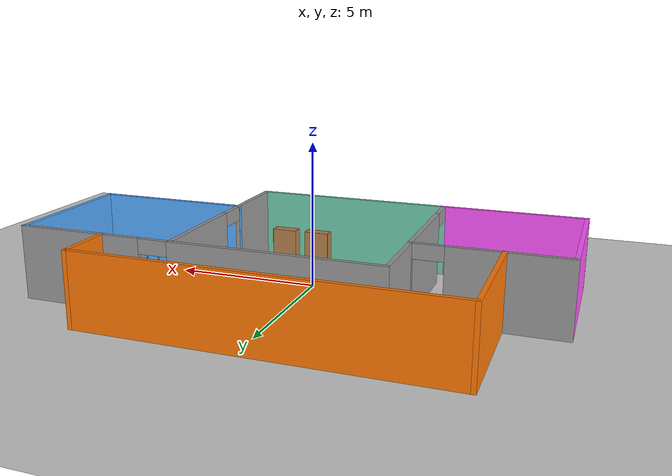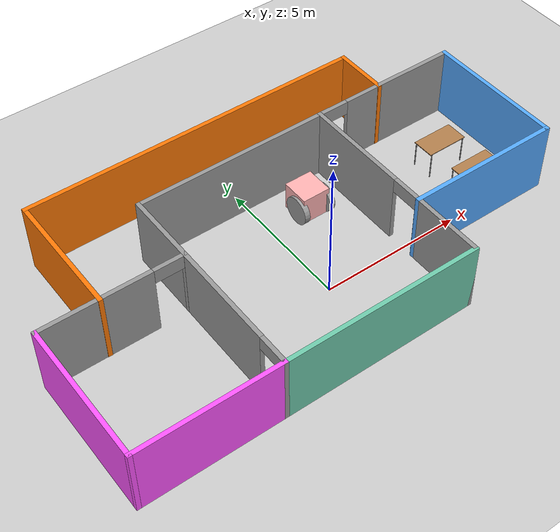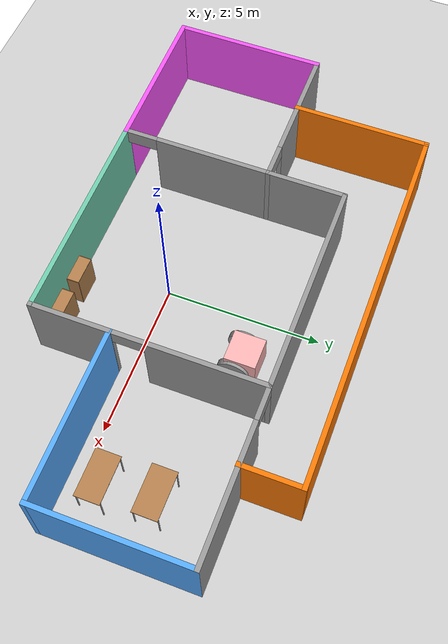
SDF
<sdf version="1.6">
 <world name="default">
  <model name="ground_plane">
   <static>1</static>
   <link name="link">
    <collision name="collision">
     <geometry><plane><normal>0 0 1</normal><size>100 100</size></plane></geometry>
     <surface>
      <contact><collide_bitmask>65535</collide_bitmask></contact>
      <friction><ode><mu>100</mu><mu2>50</mu2></ode></friction>
     </surface>
    </collision>
    <visual name="visual">
     <cast_shadows>0</cast_shadows>
     <geometry><plane><normal>0 0 1</normal><size>100 100</size></plane></geometry>
     <material>
      <script><uri>file://media/materials/scripts/gazebo.material</uri><name>Gazebo/Grey</name></script>
     </material>
    </visual>
   </link>
  </model>
  <model name="robot">
   <link name="link_0">
    <pose>0 0.2 0.6 0 -0 0</pose>
    <inertial>
     <mass>1</mass>
     <inertia>
      <ixx>0.166667</ixx>
      <ixy>0</ixy>
      <ixz>0</ixz>
      <iyy>0.166667</iyy>
      <iyz>0</iyz>
      <izz>0.166667</izz>
     </inertia>
    </inertial>
    <visual name="visual">
     <geometry><box><size>1 1 1</size></box></geometry>
     <material>
      <lighting>1</lighting>
      <script><uri>file://media/materials/scripts/gazebo.material</uri><name>Gazebo/Grey</name></script>
      <shader type="pixel"><normal_map>__default__</normal_map></shader>
      <ambient>1 0.3 0.3 1</ambient>
      <diffuse>1 0.7 0.7 1</diffuse>
      <specular>1 0.01 0.01 1</specular>
      <emissive>0 0 0 1</emissive>
     </material>
    </visual>
    <collision name="collision">
     <geometry><box><size>1 1 1</size></box></geometry>
     <surface>
      <friction>
       <ode><mu>1</mu><mu2>1</mu2><fdir1>0 0 0</fdir1><slip1>0</slip1><slip2>0</slip2></ode>
       <torsional>
        <coefficient>1</coefficient>
        <patch_radius>0</patch_radius>
        <surface_radius>0</surface_radius>
        <use_patch_radius>1</use_patch_radius>
        <ode><slip>0</slip></ode>
       </torsional>
      </friction>
      <bounce><restitution_coefficient>0</restitution_coefficient><threshold>1e+06</threshold></bounce>
      <contact>
       <collide_without_contact>0</collide_without_contact>
       <collide_without_contact_bitmask>1</collide_without_contact_bitmask>
       <collide_bitmask>1</collide_bitmask>
       <ode>
        <soft_cfm>0</soft_cfm>
        <soft_erp>0.2</soft_erp>
        <kp>1e+13</kp>
        <kd>1</kd>
        <max_vel>0.01</max_vel>
        <min_depth>0</min_depth>
       </ode>
       <bullet>
        <split_impulse>1</split_impulse>
        <split_impulse_penetration_threshold>-0.01</split_impulse_penetration_threshold>
        <soft_cfm>0</soft_cfm>
        <soft_erp>0.2</soft_erp>
        <kp>1e+13</kp>
        <kd>1</kd>
       </bullet>
      </contact>
     </surface>
    </collision>
   </link>
   <link name="link_1">
    <pose>0.5 0 0.5 -3.14159 1.56997 -3.14159</pose>
    <inertial>
     <mass>1</mass>
     <inertia><ixx>0.145833</ixx><ixy>0</ixy><ixz>0</ixz><iyy>0.145833</iyy><iyz>0</iyz><izz>0.125</izz></inertia>
    </inertial>
    <visual name="visual">
     <geometry><cylinder><radius>0.5</radius><length>0.2</length></cylinder></geometry>
     <material>
      <lighting>1</lighting>
      <script><uri>file://media/materials/scripts/gazebo.material</uri><name>Gazebo/Grey</name></script>
      <shader type="pixel"><normal_map>__default__</normal_map></shader>
      <ambient>0.3 0.3 0.3 1</ambient>
      <diffuse>0.7 0.7 0.7 1</diffuse>
      <specular>0.01 0.01 0.01 1</specular>
      <emissive>0 0 0 1</emissive>
     </material>
    </visual>
    <collision name="collision">
     <geometry><cylinder><radius>0.5</radius><length>0.2</length></cylinder></geometry>
     <surface>
      <friction>
       <ode><mu>1</mu><mu2>1</mu2><fdir1>0 0 0</fdir1><slip1>0</slip1><slip2>0</slip2></ode>
       <torsional>
        <coefficient>1</coefficient>
        <patch_radius>0</patch_radius>
        <surface_radius>0</surface_radius>
        <use_patch_radius>1</use_patch_radius>
        <ode><slip>0</slip></ode>
       </torsional>
      </friction>
      <bounce><restitution_coefficient>0</restitution_coefficient><threshold>1e+06</threshold></bounce>
      <contact>
       <collide_without_contact>0</collide_without_contact>
       <collide_without_contact_bitmask>1</collide_without_contact_bitmask>
       <collide_bitmask>1</collide_bitmask>
       <ode>
        <soft_cfm>0</soft_cfm>
        <soft_erp>0.2</soft_erp>
        <kp>1e+13</kp>
        <kd>1</kd>
        <max_vel>0.01</max_vel>
        <min_depth>0</min_depth>
       </ode>
       <bullet>
        <split_impulse>1</split_impulse>
        <split_impulse_penetration_threshold>-0.01</split_impulse_penetration_threshold>
        <soft_cfm>0</soft_cfm>
        <soft_erp>0.2</soft_erp>
        <kp>1e+13</kp>
        <kd>1</kd>
       </bullet>
      </contact>
     </surface>
    </collision>
   </link>
   <link name="link_1_clone">
    <pose>-0.5 0 0.5 -3.14159 1.56997 -3.14159</pose>
    <inertial>
     <mass>1</mass>
     <inertia><ixx>0.145833</ixx><ixy>0</ixy><ixz>0</ixz><iyy>0.145833</iyy><iyz>0</iyz><izz>0.125</izz></inertia>
    </inertial>
    <visual name="visual">
     <geometry><cylinder><radius>0.5</radius><length>0.2</length></cylinder></geometry>
     <material>
      <lighting>1</lighting>
      <script><uri>file://media/materials/scripts/gazebo.material</uri><name>Gazebo/Grey</name></script>
      <shader type="pixel"><normal_map>__default__</normal_map></shader>
      <ambient>0.3 0.3 0.3 1</ambient>
      <diffuse>0.7 0.7 0.7 1</diffuse>
      <specular>0.01 0.01 0.01 1</specular>
      <emissive>0 0 0 1</emissive>
     </material>
    </visual>
    <collision name="collision">
     <geometry><cylinder><radius>0.5</radius><length>0.2</length></cylinder></geometry>
     <surface>
      <friction>
       <ode><mu>1</mu><mu2>1</mu2><fdir1>0 0 0</fdir1><slip1>0</slip1><slip2>0</slip2></ode>
       <torsional>
        <coefficient>1</coefficient>
        <patch_radius>0</patch_radius>
        <surface_radius>0</surface_radius>
        <use_patch_radius>1</use_patch_radius>
        <ode><slip>0</slip></ode>
       </torsional>
      </friction>
      <bounce><restitution_coefficient>0</restitution_coefficient><threshold>1e+06</threshold></bounce>
      <contact>
       <collide_without_contact>0</collide_without_contact>
       <collide_without_contact_bitmask>1</collide_without_contact_bitmask>
       <collide_bitmask>1</collide_bitmask>
       <ode>
        <soft_cfm>0</soft_cfm>
        <soft_erp>0.2</soft_erp>
        <kp>1e+13</kp>
        <kd>1</kd>
        <max_vel>0.01</max_vel>
        <min_depth>0</min_depth>
       </ode>
       <bullet>
        <split_impulse>1</split_impulse>
        <split_impulse_penetration_threshold>-0.01</split_impulse_penetration_threshold>
        <soft_cfm>0</soft_cfm>
        <soft_erp>0.2</soft_erp>
        <kp>1e+13</kp>
        <kd>1</kd>
       </bullet>
      </contact>
     </surface>
    </collision>
   </link>
   <link name="link_2">
    <pose>0 0.6 0.1 0 -0 0</pose>
    <inertial>
     <mass>1</mass>
     <inertia><ixx>0.1</ixx><ixy>0</ixy><ixz>0</ixz><iyy>0.1</iyy><iyz>0</iyz><izz>0.1</izz></inertia>
    </inertial>
    <visual name="visual">
     <geometry><sphere><radius>0.1</radius></sphere></geometry>
     <material>
      <lighting>1</lighting>
      <script><uri>file://media/materials/scripts/gazebo.material</uri><name>Gazebo/Grey</name></script>
      <shader type="pixel"><normal_map>__default__</normal_map></shader>
      <ambient>0.3 0.3 0.3 1</ambient>
      <diffuse>0.7 0.7 0.7 1</diffuse>
      <specular>0.01 0.01 0.01 1</specular>
      <emissive>0 0 0 1</emissive>
     </material>
    </visual>
    <collision name="collision">
     <geometry><sphere><radius>0.1</radius></sphere></geometry>
     <surface>
      <friction>
       <ode><mu>1</mu><mu2>1</mu2><fdir1>0 0 0</fdir1><slip1>0</slip1><slip2>0</slip2></ode>
       <torsional>
        <coefficient>1</coefficient>
        <patch_radius>0</patch_radius>
        <surface_radius>0</surface_radius>
        <use_patch_radius>1</use_patch_radius>
        <ode><slip>0</slip></ode>
       </torsional>
      </friction>
      <bounce><restitution_coefficient>0</restitution_coefficient><threshold>1e+06</threshold></bounce>
      <contact>
       <collide_without_contact>0</collide_without_contact>
       <collide_without_contact_bitmask>1</collide_without_contact_bitmask>
       <collide_bitmask>1</collide_bitmask>
       <ode>
        <soft_cfm>0</soft_cfm>
        <soft_erp>0.2</soft_erp>
        <kp>1e+13</kp>
        <kd>1</kd>
        <max_vel>0.01</max_vel>
        <min_depth>0</min_depth>
       </ode>
       <bullet>
        <split_impulse>1</split_impulse>
        <split_impulse_penetration_threshold>-0.01</split_impulse_penetration_threshold>
        <soft_cfm>0</soft_cfm>
        <soft_erp>0.2</soft_erp>
        <kp>1e+13</kp>
        <kd>1</kd>
       </bullet>
      </contact>
     </surface>
    </collision>
   </link>
   <joint name="link_0_JOINT_0" type="revolute">
    <parent>link_0</parent>
    <child>link_1_clone</child>
    <axis>
     <xyz>0 0 1</xyz>
     <use_parent_model_frame>0</use_parent_model_frame>
     <limit>
      <lower>-1.79769e+308</lower>
      <upper>1.79769e+308</upper>
      <effort>-1</effort>
      <velocity>-1</velocity>
     </limit>
     <dynamics>
      <spring_reference>0</spring_reference>
      <spring_stiffness>0</spring_stiffness>
      <damping>0</damping>
      <friction>0</friction>
     </dynamics>
    </axis>
    <physics>
     <ode><limit><cfm>0</cfm><erp>0.2</erp></limit><suspension><cfm>0</cfm><erp>0.2</erp></suspension></ode>
    </physics>
   </joint>
   <joint name="link_0_JOINT_1" type="revolute">
    <parent>link_0</parent>
    <child>link_1</child>
    <axis>
     <xyz>0 0 1</xyz>
     <use_parent_model_frame>0</use_parent_model_frame>
     <limit>
      <lower>-1.79769e+308</lower>
      <upper>1.79769e+308</upper>
      <effort>-1</effort>
      <velocity>-1</velocity>
     </limit>
     <dynamics>
      <spring_reference>0</spring_reference>
      <spring_stiffness>0</spring_stiffness>
      <damping>0</damping>
      <friction>0</friction>
     </dynamics>
    </axis>
    <physics>
     <ode><limit><cfm>0</cfm><erp>0.2</erp></limit><suspension><cfm>0</cfm><erp>0.2</erp></suspension></ode>
    </physics>
   </joint>
   <joint name="link_2_JOINT_2" type="ball">
    <parent>link_0</parent>
    <child>link_2</child>
    <physics>
     <ode><limit><cfm>0</cfm><erp>0.2</erp></limit><suspension><cfm>0</cfm><erp>0.2</erp></suspension></ode>
    </physics>
   </joint>
   <static>0</static>
   <pose>1.52784 2.94156 0 0 -0 0</pose>
  </model>
  <model name="building">
   <pose>-0.175 1.65386 0 0 -0 0</pose>
   <link name="Wall_0">
    <pose>-3.675 -0.918855 0 0 -0 1.5708</pose>
    <visual name="Wall_0_Visual_0">
     <pose>-3.67936 0 1.25 0 -0 0</pose>
     <geometry><box><size>0.14129 0.15 2.5</size></box></geometry>
     <material>
      <script><uri>file://media/materials/scripts/gazebo.material</uri><name>Gazebo/Grey</name></script>
      <ambient>1 1 1 1</ambient>
     </material>
     <meta><layer>0</layer></meta>
    </visual>
    <collision name="Wall_0_Collision_0">
     <geometry><box><size>0.14129 0.15 2.5</size></box></geometry>
     <pose>-3.67936 0 1.25 0 -0 0</pose>
    </collision>
    <visual name="Wall_0_Visual_1">
     <pose>0.570645 0 1.25 0 -0 0</pose>
     <geometry><box><size>6.35871 0.15 2.5</size></box></geometry>
     <material>
      <script><uri>file://media/materials/scripts/gazebo.material</uri><name>Gazebo/Grey</name></script>
      <ambient>1 1 1 1</ambient>
     </material>
     <meta><layer>0</layer></meta>
    </visual>
    <collision name="Wall_0_Collision_1">
     <geometry><box><size>6.35871 0.15 2.5</size></box></geometry>
     <pose>0.570645 0 1.25 0 -0 0</pose>
    </collision>
    <visual name="Wall_0_Visual_2">
     <pose>-3.10871 0 2.25 0 -0 0</pose>
     <geometry><box><size>1 0.15 0.5</size></box></geometry>
     <material>
      <script><uri>file://media/materials/scripts/gazebo.material</uri><name>Gazebo/Grey</name></script>
      <ambient>1 1 1 1</ambient>
     </material>
     <meta><layer>0</layer></meta>
    </visual>
    <collision name="Wall_0_Collision_2">
     <geometry><box><size>1 0.15 0.5</size></box></geometry>
     <pose>-3.10871 0 2.25 0 -0 0</pose>
    </collision>
   </link>
   <link name="Wall_1">
    <collision name="Wall_1_Collision">
     <geometry><box><size>7 0.15 2.5</size></box></geometry>
     <pose>0 0 1.25 0 -0 0</pose>
    </collision>
    <visual name="Wall_1_Visual">
     <pose>0 0 1.25 0 -0 0</pose>
     <geometry><box><size>7 0.15 2.5</size></box></geometry>
     <material>
      <script><uri>file://media/materials/scripts/gazebo.material</uri><name>Gazebo/Grey</name></script>
      <ambient>1 1 1 1</ambient>
     </material>
     <meta><layer>0</layer></meta>
    </visual>
    <pose>-0.25 2.75615 0 0 -0 0</pose>
   </link>
   <link name="Wall_10">
    <collision name="Wall_10_Collision">
     <geometry><box><size>5 0.15 2.5</size></box></geometry>
     <pose>0 0 1.25 0 -0 0</pose>
    </collision>
    <visual name="Wall_10_Visual">
     <pose>0 0 1.25 0 -0 0</pose>
     <geometry><box><size>5 0.15 2.5</size></box></geometry>
     <material>
      <script><uri>file://media/materials/scripts/gazebo.material</uri><name>Gazebo/Grey</name></script>
      <ambient>1 0.333333 1 1</ambient>
     </material>
     <meta><layer>0</layer></meta>
    </visual>
    <pose>-6.1 -4.59385 0 0 -0 3.14159</pose>
   </link>
   <link name="Wall_11">
    <collision name="Wall_11_Collision">
     <geometry><box><size>5 0.15 2.5</size></box></geometry>
     <pose>0 0 1.25 0 -0 0</pose>
    </collision>
    <visual name="Wall_11_Visual">
     <pose>0 0 1.25 0 -0 0</pose>
     <geometry><box><size>5 0.15 2.5</size></box></geometry>
     <material>
      <script><uri>file://media/materials/scripts/gazebo.material</uri><name>Gazebo/Grey</name></script>
      <ambient>1 0.333333 1 1</ambient>
     </material>
     <meta><layer>0</layer></meta>
    </visual>
    <pose>-8.525 -2.16886 0 0 -0 1.5708</pose>
   </link>
   <link name="Wall_12">
    <pose>-6.1 0.256145 0 0 -0 0</pose>
    <visual name="Wall_12_Visual_0">
     <pose>-0.57556 0 1.25 0 -0 0</pose>
     <geometry><box><size>3.84888 0.15 2.5</size></box></geometry>
     <material>
      <script><uri>file://media/materials/scripts/gazebo.material</uri><name>Gazebo/Grey</name></script>
      <ambient>1 1 1 1</ambient>
     </material>
     <meta><layer>0</layer></meta>
    </visual>
    <collision name="Wall_12_Collision_0">
     <geometry><box><size>3.84888 0.15 2.5</size></box></geometry>
     <pose>-0.57556 0 1.25 0 -0 0</pose>
    </collision>
    <visual name="Wall_12_Visual_1">
     <pose>2.42444 0 1.25 0 -0 0</pose>
     <geometry><box><size>0.151119 0.15 2.5</size></box></geometry>
     <material>
      <script><uri>file://media/materials/scripts/gazebo.material</uri><name>Gazebo/Grey</name></script>
      <ambient>1 1 1 1</ambient>
     </material>
     <meta><layer>0</layer></meta>
    </visual>
    <collision name="Wall_12_Collision_1">
     <geometry><box><size>0.151119 0.15 2.5</size></box></geometry>
     <pose>2.42444 0 1.25 0 -0 0</pose>
    </collision>
    <visual name="Wall_12_Visual_2">
     <pose>1.84888 0 2.25 0 -0 0</pose>
     <geometry><box><size>1 0.15 0.5</size></box></geometry>
     <material>
      <script><uri>file://media/materials/scripts/gazebo.material</uri><name>Gazebo/Grey</name></script>
      <ambient>1 1 1 1</ambient>
     </material>
     <meta><layer>0</layer></meta>
    </visual>
    <collision name="Wall_12_Collision_2">
     <geometry><box><size>1 0.15 0.5</size></box></geometry>
     <pose>1.84888 0 2.25 0 -0 0</pose>
    </collision>
   </link>
   <link name="Wall_14">
    <collision name="Wall_14_Collision">
     <geometry><box><size>4.5 0.15 2.5</size></box></geometry>
     <pose>0 0 1.25 0 -0 0</pose>
    </collision>
    <visual name="Wall_14_Visual">
     <pose>0 0 1.25 0 -0 0</pose>
     <geometry><box><size>4.5 0.15 2.5</size></box></geometry>
     <material>
      <script><uri>file://media/materials/scripts/gazebo.material</uri><name>Gazebo/Grey</name></script>
      <ambient>0.996078 0.47451 0.0196078 1</ambient>
     </material>
     <meta><layer>0</layer></meta>
    </visual>
    <pose>-6.50181 2.41886 0 0 -0 1.5708</pose>
   </link>
   <link name="Wall_15">
    <collision name="Wall_15_Collision">
     <geometry><box><size>12.25 0.15 2.5</size></box></geometry>
     <pose>0 0 1.25 0 -0 0</pose>
    </collision>
    <visual name="Wall_15_Visual">
     <pose>0 0 1.25 0 -0 0</pose>
     <geometry><box><size>12.25 0.15 2.5</size></box></geometry>
     <material>
      <script><uri>file://media/materials/scripts/gazebo.material</uri><name>Gazebo/Grey</name></script>
      <ambient>0.996078 0.47451 0.0196078 1</ambient>
     </material>
     <meta><layer>0</layer></meta>
    </visual>
    <pose>-0.451808 4.59385 0 0 -0 0</pose>
   </link>
   <link name="Wall_16">
    <collision name="Wall_16_Collision">
     <geometry><box><size>2 0.15 2.5</size></box></geometry>
     <pose>0 0 1.25 0 -0 0</pose>
    </collision>
    <visual name="Wall_16_Visual">
     <pose>0 0 1.25 0 -0 0</pose>
     <geometry><box><size>2 0.15 2.5</size></box></geometry>
     <material>
      <script><uri>file://media/materials/scripts/gazebo.material</uri><name>Gazebo/Grey</name></script>
      <ambient>0.996078 0.47451 0.0196078 1</ambient>
     </material>
     <meta><layer>0</layer></meta>
    </visual>
    <pose>5.59819 3.66886 0 0 0 -1.5708</pose>
   </link>
   <link name="Wall_3">
    <collision name="Wall_3_Collision">
     <geometry><box><size>7 0.15 2.5</size></box></geometry>
     <pose>0 0 1.25 0 -0 0</pose>
    </collision>
    <visual name="Wall_3_Visual">
     <pose>0 0 1.25 0 -0 0</pose>
     <geometry><box><size>7 0.15 2.5</size></box></geometry>
     <material>
      <script><uri>file://media/materials/scripts/gazebo.material</uri><name>Gazebo/Grey</name></script>
      <ambient>0.435294 0.796078 0.67451 1</ambient>
     </material>
     <meta><layer>0</layer></meta>
    </visual>
    <pose>-0.25 -4.59385 0 0 -0 0</pose>
   </link>
   <link name="Wall_4">
    <pose>3.175 -0.918855 0 0 -0 1.5708</pose>
    <visual name="Wall_4_Visual_0">
     <pose>-2.42209 0 1.25 0 -0 0</pose>
     <geometry><box><size>2.65581 0.15 2.5</size></box></geometry>
     <material>
      <script><uri>file://media/materials/scripts/gazebo.material</uri><name>Gazebo/Grey</name></script>
      <ambient>1 1 1 1</ambient>
     </material>
     <meta><layer>0</layer></meta>
    </visual>
    <collision name="Wall_4_Collision_0">
     <geometry><box><size>2.65581 0.15 2.5</size></box></geometry>
     <pose>-2.42209 0 1.25 0 -0 0</pose>
    </collision>
    <visual name="Wall_4_Visual_1">
     <pose>1.82791 0 1.25 0 -0 0</pose>
     <geometry><box><size>3.84419 0.15 2.5</size></box></geometry>
     <material>
      <script><uri>file://media/materials/scripts/gazebo.material</uri><name>Gazebo/Grey</name></script>
      <ambient>1 1 1 1</ambient>
     </material>
     <meta><layer>0</layer></meta>
    </visual>
    <collision name="Wall_4_Collision_1">
     <geometry><box><size>3.84419 0.15 2.5</size></box></geometry>
     <pose>1.82791 0 1.25 0 -0 0</pose>
    </collision>
    <visual name="Wall_4_Visual_2">
     <pose>-0.594186 0 2.25 0 -0 0</pose>
     <geometry><box><size>1 0.15 0.5</size></box></geometry>
     <material>
      <script><uri>file://media/materials/scripts/gazebo.material</uri><name>Gazebo/Grey</name></script>
      <ambient>1 1 1 1</ambient>
     </material>
     <meta><layer>0</layer></meta>
    </visual>
    <collision name="Wall_4_Collision_2">
     <geometry><box><size>1 0.15 0.5</size></box></geometry>
     <pose>-0.594186 0 2.25 0 -0 0</pose>
    </collision>
   </link>
   <link name="Wall_6">
    <pose>5.85 2.75615 0 0 -0 0</pose>
    <visual name="Wall_6_Visual_0">
     <pose>-2.67535 0 1.25 0 -0 0</pose>
     <geometry><box><size>0.149302 0.15 2.5</size></box></geometry>
     <material>
      <script><uri>file://media/materials/scripts/gazebo.material</uri><name>Gazebo/Grey</name></script>
      <ambient>1 1 1 1</ambient>
     </material>
     <meta><layer>0</layer></meta>
    </visual>
    <collision name="Wall_6_Collision_0">
     <geometry><box><size>0.149302 0.15 2.5</size></box></geometry>
     <pose>-2.67535 0 1.25 0 -0 0</pose>
    </collision>
    <visual name="Wall_6_Visual_1">
     <pose>0.574651 0 1.25 0 -0 0</pose>
     <geometry><box><size>4.3507 0.15 2.5</size></box></geometry>
     <material>
      <script><uri>file://media/materials/scripts/gazebo.material</uri><name>Gazebo/Grey</name></script>
      <ambient>1 1 1 1</ambient>
     </material>
     <meta><layer>0</layer></meta>
    </visual>
    <collision name="Wall_6_Collision_1">
     <geometry><box><size>4.3507 0.15 2.5</size></box></geometry>
     <pose>0.574651 0 1.25 0 -0 0</pose>
    </collision>
    <visual name="Wall_6_Visual_2">
     <pose>-2.1007 0 2.25 0 -0 0</pose>
     <geometry><box><size>1 0.15 0.5</size></box></geometry>
     <material>
      <script><uri>file://media/materials/scripts/gazebo.material</uri><name>Gazebo/Grey</name></script>
      <ambient>1 1 1 1</ambient>
     </material>
     <meta><layer>0</layer></meta>
    </visual>
    <collision name="Wall_6_Collision_2">
     <geometry><box><size>1 0.15 0.5</size></box></geometry>
     <pose>-2.1007 0 2.25 0 -0 0</pose>
    </collision>
   </link>
   <link name="Wall_7">
    <collision name="Wall_7_Collision">
     <geometry><box><size>5 0.15 2.5</size></box></geometry>
     <pose>0 0 1.25 0 -0 0</pose>
    </collision>
    <visual name="Wall_7_Visual">
     <pose>0 0 1.25 0 -0 0</pose>
     <geometry><box><size>5 0.15 2.5</size></box></geometry>
     <material>
      <script><uri>file://media/materials/scripts/gazebo.material</uri><name>Gazebo/Grey</name></script>
      <ambient>0.333333 0.666667 1 1</ambient>
     </material>
     <meta><layer>0</layer></meta>
    </visual>
    <pose>8.525 0.331145 0 0 0 -1.5708</pose>
   </link>
   <link name="Wall_8">
    <collision name="Wall_8_Collision">
     <geometry><box><size>5.5 0.15 2.5</size></box></geometry>
     <pose>0 0 1.25 0 -0 0</pose>
    </collision>
    <visual name="Wall_8_Visual">
     <pose>0 0 1.25 0 -0 0</pose>
     <geometry><box><size>5.5 0.15 2.5</size></box></geometry>
     <material>
      <script><uri>file://media/materials/scripts/gazebo.material</uri><name>Gazebo/Grey</name></script>
      <ambient>0.333333 0.666667 1 1</ambient>
     </material>
     <meta><layer>0</layer></meta>
    </visual>
    <pose>5.85 -2.09386 0 0 -0 3.14159</pose>
   </link>
   <static>1</static>
  </model>
  <model name="bookshelf">
   <static>1</static>
   <link name="link">
    <inertial><mass>1</mass></inertial>
    <collision name="back">
     <pose>0 0.005 0.6 0 -0 0</pose>
     <geometry><box><size>0.9 0.01 1.2</size></box></geometry>
    </collision>
    <visual name="visual1">
     <pose>0 0.005 0.6 0 -0 0</pose>
     <geometry><box><size>0.9 0.01 1.2</size></box></geometry>
     <material>
      <script><uri>file://media/materials/scripts/gazebo.material</uri><name>Gazebo/Wood</name></script>
     </material>
    </visual>
    <collision name="left_side">
     <pose>0.45 -0.195 0.6 0 -0 0</pose>
     <geometry><box><size>0.02 0.4 1.2</size></box></geometry>
    </collision>
    <visual name="visual2">
     <pose>0.45 -0.195 0.6 0 -0 0</pose>
     <geometry><box><size>0.02 0.4 1.2</size></box></geometry>
     <material>
      <script><uri>file://media/materials/scripts/gazebo.material</uri><name>Gazebo/Wood</name></script>
     </material>
    </visual>
    <collision name="right_side">
     <pose>-0.45 -0.195 0.6 0 -0 0</pose>
     <geometry><box><size>0.02 0.4 1.2</size></box></geometry>
    </collision>
    <visual name="visual3">
     <pose>-0.45 -0.195 0.6 0 -0 0</pose>
     <geometry><box><size>0.02 0.4 1.2</size></box></geometry>
     <material>
      <script><uri>file://media/materials/scripts/gazebo.material</uri><name>Gazebo/Wood</name></script>
     </material>
    </visual>
    <collision name="bottom">
     <pose>0 -0.195 0.03 0 -0 0</pose>
     <geometry><box><size>0.88 0.4 0.06</size></box></geometry>
    </collision>
    <visual name="visual4">
     <pose>0 -0.195 0.03 0 -0 0</pose>
     <geometry><box><size>0.88 0.4 0.06</size></box></geometry>
     <material>
      <script><uri>file://media/materials/scripts/gazebo.material</uri><name>Gazebo/Wood</name></script>
     </material>
    </visual>
    <collision name="top">
     <pose>0 -0.195 1.19 0 -0 0</pose>
     <geometry><box><size>0.88 0.4 0.02</size></box></geometry>
    </collision>
    <visual name="visual5">
     <pose>0 -0.195 1.19 0 -0 0</pose>
     <geometry><box><size>0.88 0.4 0.02</size></box></geometry>
     <material>
      <script><uri>file://media/materials/scripts/gazebo.material</uri><name>Gazebo/Wood</name></script>
     </material>
    </visual>
    <collision name="low_shelf">
     <pose>0 -0.195 0.43 0 -0 0</pose>
     <geometry><box><size>0.88 0.4 0.02</size></box></geometry>
    </collision>
    <visual name="visual6">
     <pose>0 -0.195 0.43 0 -0 0</pose>
     <geometry><box><size>0.88 0.4 0.02</size></box></geometry>
     <material>
      <script><uri>file://media/materials/scripts/gazebo.material</uri><name>Gazebo/Wood</name></script>
     </material>
    </visual>
    <collision name="high_shelf">
     <pose>0 -0.195 0.8 0 -0 0</pose>
     <geometry><box><size>0.88 0.4 0.02</size></box></geometry>
    </collision>
    <visual name="visual7">
     <pose>0 -0.195 0.8 0 -0 0</pose>
     <geometry><box><size>0.88 0.4 0.02</size></box></geometry>
     <material>
      <script><uri>file://media/materials/scripts/gazebo.material</uri><name>Gazebo/Wood</name></script>
     </material>
    </visual>
   </link>
   <pose>2.05165 -2.40605 0 0 -0 0</pose>
  </model>
  <model name="bookshelf_0">
   <static>1</static>
   <link name="link">
    <inertial><mass>1</mass></inertial>
    <collision name="back">
     <pose>0 0.005 0.6 0 -0 0</pose>
     <geometry><box><size>0.9 0.01 1.2</size></box></geometry>
    </collision>
    <visual name="visual1">
     <pose>0 0.005 0.6 0 -0 0</pose>
     <geometry><box><size>0.9 0.01 1.2</size></box></geometry>
     <material>
      <script><uri>file://media/materials/scripts/gazebo.material</uri><name>Gazebo/Wood</name></script>
     </material>
    </visual>
    <collision name="left_side">
     <pose>0.45 -0.195 0.6 0 -0 0</pose>
     <geometry><box><size>0.02 0.4 1.2</size></box></geometry>
    </collision>
    <visual name="visual2">
     <pose>0.45 -0.195 0.6 0 -0 0</pose>
     <geometry><box><size>0.02 0.4 1.2</size></box></geometry>
     <material>
      <script><uri>file://media/materials/scripts/gazebo.material</uri><name>Gazebo/Wood</name></script>
     </material>
    </visual>
    <collision name="right_side">
     <pose>-0.45 -0.195 0.6 0 -0 0</pose>
     <geometry><box><size>0.02 0.4 1.2</size></box></geometry>
    </collision>
    <visual name="visual3">
     <pose>-0.45 -0.195 0.6 0 -0 0</pose>
     <geometry><box><size>0.02 0.4 1.2</size></box></geometry>
     <material>
      <script><uri>file://media/materials/scripts/gazebo.material</uri><name>Gazebo/Wood</name></script>
     </material>
    </visual>
    <collision name="bottom">
     <pose>0 -0.195 0.03 0 -0 0</pose>
     <geometry><box><size>0.88 0.4 0.06</size></box></geometry>
    </collision>
    <visual name="visual4">
     <pose>0 -0.195 0.03 0 -0 0</pose>
     <geometry><box><size>0.88 0.4 0.06</size></box></geometry>
     <material>
      <script><uri>file://media/materials/scripts/gazebo.material</uri><name>Gazebo/Wood</name></script>
     </material>
    </visual>
    <collision name="top">
     <pose>0 -0.195 1.19 0 -0 0</pose>
     <geometry><box><size>0.88 0.4 0.02</size></box></geometry>
    </collision>
    <visual name="visual5">
     <pose>0 -0.195 1.19 0 -0 0</pose>
     <geometry><box><size>0.88 0.4 0.02</size></box></geometry>
     <material>
      <script><uri>file://media/materials/scripts/gazebo.material</uri><name>Gazebo/Wood</name></script>
     </material>
    </visual>
    <collision name="low_shelf">
     <pose>0 -0.195 0.43 0 -0 0</pose>
     <geometry><box><size>0.88 0.4 0.02</size></box></geometry>
    </collision>
    <visual name="visual6">
     <pose>0 -0.195 0.43 0 -0 0</pose>
     <geometry><box><size>0.88 0.4 0.02</size></box></geometry>
     <material>
      <script><uri>file://media/materials/scripts/gazebo.material</uri><name>Gazebo/Wood</name></script>
     </material>
    </visual>
    <collision name="high_shelf">
     <pose>0 -0.195 0.8 0 -0 0</pose>
     <geometry><box><size>0.88 0.4 0.02</size></box></geometry>
    </collision>
    <visual name="visual7">
     <pose>0 -0.195 0.8 0 -0 0</pose>
     <geometry><box><size>0.88 0.4 0.02</size></box></geometry>
     <material>
      <script><uri>file://media/materials/scripts/gazebo.material</uri><name>Gazebo/Wood</name></script>
     </material>
    </visual>
   </link>
   <pose>0.788846 -2.42656 0 0 -0 0</pose>
  </model>
  <model name="table">
   <static>1</static>
   <link name="link">
    <collision name="surface">
     <pose>0 0 1 0 -0 0</pose>
     <geometry><box><size>1.5 0.8 0.03</size></box></geometry>
     <surface><friction><ode><mu>0.6</mu><mu2>0.6</mu2></ode></friction></surface>
    </collision>
    <visual name="visual1">
     <pose>0 0 1 0 -0 0</pose>
     <geometry><box><size>1.5 0.8 0.03</size></box></geometry>
     <material>
      <script><uri>file://media/materials/scripts/gazebo.material</uri><name>Gazebo/Wood</name></script>
     </material>
    </visual>
    <collision name="front_left_leg">
     <pose>0.68 0.38 0.5 0 -0 0</pose>
     <geometry><cylinder><radius>0.02</radius><length>1</length></cylinder></geometry>
    </collision>
    <visual name="front_left_leg">
     <pose>0.68 0.38 0.5 0 -0 0</pose>
     <geometry><cylinder><radius>0.02</radius><length>1</length></cylinder></geometry>
     <material>
      <script><uri>file://media/materials/scripts/gazebo.material</uri><name>Gazebo/Grey</name></script>
     </material>
    </visual>
    <collision name="front_right_leg">
     <pose>0.68 -0.38 0.5 0 -0 0</pose>
     <geometry><cylinder><radius>0.02</radius><length>1</length></cylinder></geometry>
    </collision>
    <visual name="front_right_leg">
     <pose>0.68 -0.38 0.5 0 -0 0</pose>
     <geometry><cylinder><radius>0.02</radius><length>1</length></cylinder></geometry>
     <material>
      <script><uri>file://media/materials/scripts/gazebo.material</uri><name>Gazebo/Grey</name></script>
     </material>
    </visual>
    <collision name="back_right_leg">
     <pose>-0.68 -0.38 0.5 0 -0 0</pose>
     <geometry><cylinder><radius>0.02</radius><length>1</length></cylinder></geometry>
    </collision>
    <visual name="back_right_leg">
     <pose>-0.68 -0.38 0.5 0 -0 0</pose>
     <geometry><cylinder><radius>0.02</radius><length>1</length></cylinder></geometry>
     <material>
      <script><uri>file://media/materials/scripts/gazebo.material</uri><name>Gazebo/Grey</name></script>
     </material>
    </visual>
    <collision name="back_left_leg">
     <pose>-0.68 0.38 0.5 0 -0 0</pose>
     <geometry><cylinder><radius>0.02</radius><length>1</length></cylinder></geometry>
    </collision>
    <visual name="back_left_leg">
     <pose>-0.68 0.38 0.5 0 -0 0</pose>
     <geometry><cylinder><radius>0.02</radius><length>1</length></cylinder></geometry>
     <material>
      <script><uri>file://media/materials/scripts/gazebo.material</uri><name>Gazebo/Grey</name></script>
     </material>
    </visual>
   </link>
   <pose>6.60191 0.672997 0 0 -0 0</pose>
  </model>
  <model name="table_0">
   <static>1</static>
   <link name="link">
    <collision name="surface">
     <pose>0 0 1 0 -0 0</pose>
     <geometry><box><size>1.5 0.8 0.03</size></box></geometry>
     <surface><friction><ode><mu>0.6</mu><mu2>0.6</mu2></ode></friction></surface>
    </collision>
    <visual name="visual1">
     <pose>0 0 1 0 -0 0</pose>
     <geometry><box><size>1.5 0.8 0.03</size></box></geometry>
     <material>
      <script><uri>file://media/materials/scripts/gazebo.material</uri><name>Gazebo/Wood</name></script>
     </material>
    </visual>
    <collision name="front_left_leg">
     <pose>0.68 0.38 0.5 0 -0 0</pose>
     <geometry><cylinder><radius>0.02</radius><length>1</length></cylinder></geometry>
    </collision>
    <visual name="front_left_leg">
     <pose>0.68 0.38 0.5 0 -0 0</pose>
     <geometry><cylinder><radius>0.02</radius><length>1</length></cylinder></geometry>
     <material>
      <script><uri>file://media/materials/scripts/gazebo.material</uri><name>Gazebo/Grey</name></script>
     </material>
    </visual>
    <collision name="front_right_leg">
     <pose>0.68 -0.38 0.5 0 -0 0</pose>
     <geometry><cylinder><radius>0.02</radius><length>1</length></cylinder></geometry>
    </collision>
    <visual name="front_right_leg">
     <pose>0.68 -0.38 0.5 0 -0 0</pose>
     <geometry><cylinder><radius>0.02</radius><length>1</length></cylinder></geometry>
     <material>
      <script><uri>file://media/materials/scripts/gazebo.material</uri><name>Gazebo/Grey</name></script>
     </material>
    </visual>
    <collision name="back_right_leg">
     <pose>-0.68 -0.38 0.5 0 -0 0</pose>
     <geometry><cylinder><radius>0.02</radius><length>1</length></cylinder></geometry>
    </collision>
    <visual name="back_right_leg">
     <pose>-0.68 -0.38 0.5 0 -0 0</pose>
     <geometry><cylinder><radius>0.02</radius><length>1</length></cylinder></geometry>
     <material>
      <script><uri>file://media/materials/scripts/gazebo.material</uri><name>Gazebo/Grey</name></script>
     </material>
    </visual>
    <collision name="back_left_leg">
     <pose>-0.68 0.38 0.5 0 -0 0</pose>
     <geometry><cylinder><radius>0.02</radius><length>1</length></cylinder></geometry>
    </collision>
    <visual name="back_left_leg">
     <pose>-0.68 0.38 0.5 0 -0 0</pose>
     <geometry><cylinder><radius>0.02</radius><length>1</length></cylinder></geometry>
     <material>
      <script><uri>file://media/materials/scripts/gazebo.material</uri><name>Gazebo/Grey</name></script>
     </material>
    </visual>
   </link>
   <pose>6.4659 2.3352 0 0 -0 0</pose>
  </model>
 </world>
</sdf>
